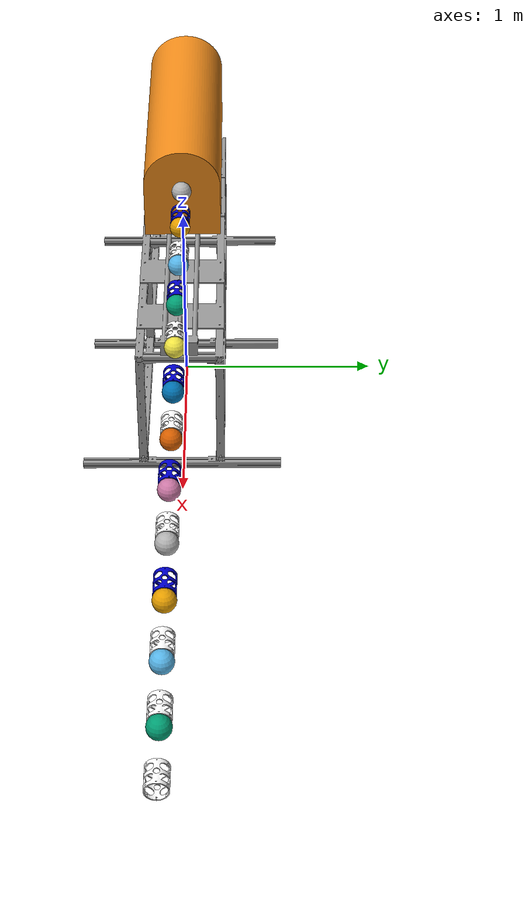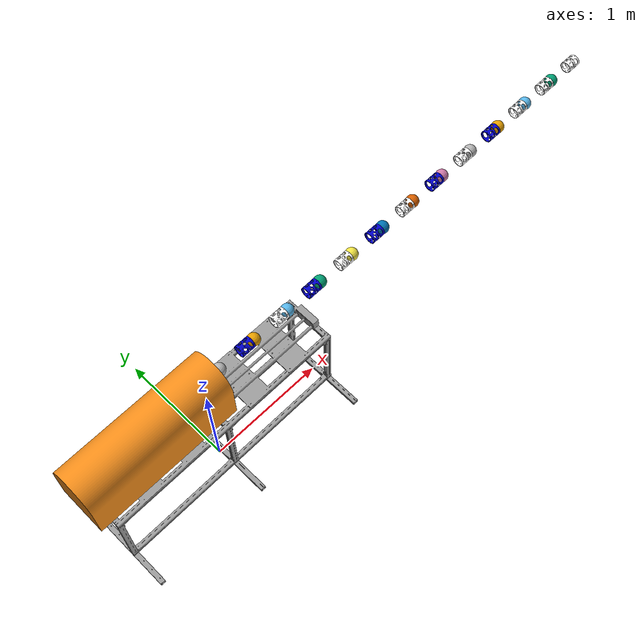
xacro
<?xml version="1.0"?>
<robot name="snake_12" xmlns:xacro="http://www.ros.org/wiki/xacro">

  <!-- properties -->
  <xacro:property name="cyl_radius" value="0.0475" />
  <xacro:property name="cyl_diameter" value="0.095" />
  <xacro:property name="cyl_height" value="0.12" />
  <xacro:property name="cyl_mass" value="0.125" /> <!-- in kg-->
  <xacro:property name="rev_axisY" value="0 1 0" />
  <xacro:property name="rev_axisZ" value="0 0 1" />
  <xacro:property name="deg2rad" value="0.01745329251994329577"/>
  <xacro:property name="Deg90Rad" value="1.57079632679"/>

  <macro name="cylinder_inertia" params="mass">
  <origin xyz="0 0 0" rpy="0 0 0"/>
    <inertia ixx="0.0741666666667" ixy="0.0" ixz="0.0" iyy="0.0585416666667" iyz="0.0" izz="0.0260416666667"/>
  </macro>

  <material name="blue">
    <color rgba="0 0 0.8 1"/>
  </material>
  <material name="black">
    <color rgba="0 0 0 1"/>
  </material>
  <material name="white">
    <color rgba="1 1 1 1"/>
  </material>
  <material name="red">
    <color rgba="1 0 0 1"/>
  </material>

  <xacro:macro name="transmission_block" params="joint_name">
	  <transmission name="tran1">
	    <type>transmission_interface/SimpleTransmission</type>
	    <joint name="${joint_name}">
	      <hardwareInterface>hardware_interface/PositionJointInterface</hardwareInterface>
	    </joint>
	    <actuator name="motor_${joint_name}">
	      <hardwareInterface>hardware_interface/PositionJointInterface</hardwareInterface>
	      <mechanicalReduction>1</mechanicalReduction>
	    </actuator>
	  </transmission>
   </xacro:macro>

<xacro:macro name="cyl" params="num material">
     <!-- params : number color revAxis { Y , Z } -->
    <link name="link_${num}">
      <visual>

        <origin rpy="0.0 0.0 0.0" xyz="${-cyl_radius} 0.024 ${-cyl_radius}"/>
        <geometry>
          <mesh filename="package://robot_snake_simulation/meshes/link_2.STL"/>
        </geometry>
        <material name="${material}" />
      </visual>

      <collision>
        <origin rpy="0.0 0.0 0.0" xyz="${-cyl_radius} 0.024 ${-cyl_radius}"/>
        <geometry>
          <mesh filename="package://robot_snake_simulation/meshes/link_2.STL"/>
        </geometry>
      </collision>
      <inertial>
        <mass value="${cyl_mass}" />
        <inertia ixx="0.4" ixy="0.0" ixz="0.0" iyy="0.4" iyz="0.0" izz="0.2"/>
      </inertial>
    </link>
  </xacro:macro>

<xacro:macro name="link_fake" params="num">
  <link name="link_fake_${num}">
    <visual>
        <origin xyz="0 0 0" rpy="0 0 0" />
        <geometry>
          <sphere radius="0.05"/>
        </geometry>
    </visual>
    <collision>
        <origin xyz="0 0 0" rpy="0 0 0" />
        <geometry>
          <sphere radius="0.05"/>
        </geometry>
    </collision>
  </link>
</xacro:macro>

 <xacro:macro name="attachjoint" params="parent child rev">
  <joint name="joint_${child}" type="continuous">
    <parent link="link_${parent}"/>
    <child link="link_${child}"/>
    <origin xyz="0.0 0.16 0.0" rpy="0.0 0.0 0.0" />
    <axis xyz="${rev}" />
    <dynamics damping="0.7"/>
  </joint>
 </xacro:macro>

<link name="world"/>

<link name="base_link" >
  <visual>
    <origin rpy="1.57079632679 0 3.14159265359" xyz="1 -0.5 -0.36"/>
    <geometry>
      <mesh filename="package://robot_snake_simulation/meshes/base.STL"/>
    </geometry>
  </visual>
  <collision>
    <geometry>
      <box size="2 1 0.72"/>
    </geometry>
  </collision>
  <inertial>
    <origin xyz="0 0 0" rpy="0 0 0"/>
    <mass value="100000" />
    <inertia ixx="100000" ixy="0.0" ixz="0.0" iyy="100000" iyz="0.0" izz="100000"/>
  </inertial>
</link>

    <link name="arc" >
      <visual>
        <origin rpy="0 0 0" xyz="-0.6 -0.195 -0.3175"/>
        <geometry>
          <mesh filename="package://robot_snake_simulation/meshes/arc.STL"/>
        </geometry>
      </visual>
    <collision>
    <origin rpy="0 0 0" xyz="0 0 0"/>
      <geometry>
        <box size="1.2 0.3 0.3"/>
      </geometry>
    </collision>
    <inertial>
      <origin xyz="0 0 0" rpy="0 0 0"/>
      <mass value="0.2" />
      <inertia ixx="0.0741666666667" ixy="0.0" ixz="0.0" iyy="0.0585416666667" iyz="0.0" izz="0.0260416666667"/>
   </inertial>
  </link>

  <xacro:cyl num="1"  material="blue" />
  <xacro:cyl num="2"  material="white" />
  <xacro:cyl num="3"  material="blue" />
  <xacro:cyl num="4"  material="white"/>
  <xacro:cyl num="5"  material="blue" />
  <xacro:cyl num="6"  material="white" />
  <xacro:cyl num="7"  material="blue" />
  <xacro:cyl num="8"  material="white" />
  <xacro:cyl num="9"  material="blue" />
  <xacro:cyl num="10" material="white" />
  <xacro:cyl num="11" material="white" />
  <xacro:cyl num="12" material="white" />
  <xacro:link_fake num="1" />
  <xacro:link_fake num="2" />
  <xacro:link_fake num="3" />
  <xacro:link_fake num="4" />
  <xacro:link_fake num="5" />
  <xacro:link_fake num="6" />
  <xacro:link_fake num="7" />
  <xacro:link_fake num="8" />
  <xacro:link_fake num="9" />
  <xacro:link_fake num="10" />
  <xacro:link_fake num="11" />
  <xacro:link_fake num="12" />

  <joint name="fixed" type="fixed">
    <parent link="world"/>
    <child link="base_link"/>
    <origin xyz="0.0 0.0 0.5" rpy="0 0 0" />
  </joint>

  <joint name="linear1" type="prismatic">
    <parent link="base_link"/>
    <child link="arc"/>
    <limit effort="0" lower="0" upper="2" velocity="0.5"/>
    <axis xyz="1 0 0" />
    <origin xyz="-0.5 0 ${0.7365-0.03175}" rpy="0 0 0" />
        <dynamics damping="0.7"/>
  </joint>

  <joint name="joint_fake_1" type="continuous">
    <parent link="arc"/>
    <child link="link_fake_1"/>

    <origin xyz="0.648 0.0 ${cyl_radius}" rpy="0.0 0.0 ${-Deg90Rad}" />
    <axis xyz="0 0 1" />
    <dynamics damping="0.7"/>
  </joint>

<xacro:attachjoint parent="fake_1"  child="1" rev="0 1 0" />

<xacro:attachjoint parent="1"  child="fake_2" rev="0 0 1" />
<xacro:attachjoint parent="fake_2"  child="2" rev="0 1 0" />

<xacro:attachjoint parent="2"  child="fake_3" rev="0 0 1" />
<xacro:attachjoint parent="fake_3"  child="3" rev="0 1 0" />

<xacro:attachjoint parent="3"  child="fake_4" rev="0 0 1" />
<xacro:attachjoint parent="fake_4"  child="4" rev="0 1 0" />

<xacro:attachjoint parent="4"  child="fake_5" rev="0 0 1" />
<xacro:attachjoint parent="fake_5"  child="5" rev="0 1 0" />

<xacro:attachjoint parent="5"  child="fake_6" rev="0 0 1" />
<xacro:attachjoint parent="fake_6"  child="6" rev="0 1 0" />

<xacro:attachjoint parent="6"  child="fake_7" rev="0 0 1" />
<xacro:attachjoint parent="fake_7"  child="7" rev="0 1 0" />

<xacro:attachjoint parent="7"  child="fake_8" rev="0 0 1" />
<xacro:attachjoint parent="fake_8"  child="8" rev="0 1 0" />

<xacro:attachjoint parent="8"  child="fake_9" rev="0 0 1" />
<xacro:attachjoint parent="fake_9"  child="9" rev="0 1 0" />

<xacro:attachjoint parent="9"  child="fake_10" rev="0 0 1" />
<xacro:attachjoint parent="fake_10"  child="10" rev="0 1 0" />

<xacro:attachjoint parent="10"  child="fake_11" rev="0 0 1" />
<xacro:attachjoint parent="fake_11"  child="11" rev="0 1 0" />

<xacro:attachjoint parent="11"  child="fake_12" rev="0 0 1" />
<xacro:attachjoint parent="fake_12"  child="12" rev="0 1 0" />

<gazebo reference="base_link">
  <material>Gazebo/Gray</material>
</gazebo>
  <gazebo reference="arc">
<material>Gazebo/Orange</material>
</gazebo>
  <gazebo reference="link_1">
<material>Gazebo/White</material>
</gazebo>
  <gazebo reference="link_2">
<material>Gazebo/Blue</material>
</gazebo>
<gazebo reference="link_3">
  <material>Gazebo/White</material>
</gazebo>
<gazebo reference="link_4">
  <material>Gazebo/Blue</material>
</gazebo>
<gazebo reference="link_5">
  <material>Gazebo/White</material>
</gazebo>
<gazebo reference="link_6">
  <material>Gazebo/Blue</material>
</gazebo>
<gazebo reference="link_7">
  <material>Gazebo/White</material>
</gazebo>
<gazebo reference="link_8">
  <material>Gazebo/Blue</material>
</gazebo>
<gazebo reference="link_9">
  <material>Gazebo/White</material>
</gazebo>
<gazebo reference="link_10">
  <material>Gazebo/Blue</material>
</gazebo>
<gazebo reference="link_11">
  <material>Gazebo/White</material>
</gazebo>
<gazebo reference="link_12">
  <material>Gazebo/Blue</material>
</gazebo>

  <!-- Transmissions for ROS Control -->
<transmission name="linear1">
  <type>transmission_interface/SimpleTransmission</type>
  <joint name="linear1">
    <hardwareInterface>hardware_interface/PositionJointInterface</hardwareInterface>
  </joint>
  <actuator name="motor_0">
	  <hardwareInterface>hardware_interface/PositionJointInterface</hardwareInterface>
	  <mechanicalReduction>1</mechanicalReduction>
	</actuator>
</transmission>

   <xacro:transmission_block joint_name="joint_fake_1"/>
   <xacro:transmission_block joint_name="joint_1"/>

   <xacro:transmission_block joint_name="joint_fake_2"/>
   <xacro:transmission_block joint_name="joint_2"/>

   <xacro:transmission_block joint_name="joint_fake_3"/>
   <xacro:transmission_block joint_name="joint_3"/>

   <xacro:transmission_block joint_name="joint_fake_4"/>
   <xacro:transmission_block joint_name="joint_4"/>

   <xacro:transmission_block joint_name="joint_fake_5"/>
   <xacro:transmission_block joint_name="joint_5"/>

   <xacro:transmission_block joint_name="joint_fake_6"/>
   <xacro:transmission_block joint_name="joint_6"/>

   <xacro:transmission_block joint_name="joint_fake_7"/>
   <xacro:transmission_block joint_name="joint_7"/>

   <xacro:transmission_block joint_name="joint_fake_8"/>
   <xacro:transmission_block joint_name="joint_8"/>

   <xacro:transmission_block joint_name="joint_fake_9"/>
   <xacro:transmission_block joint_name="joint_9"/>

   <xacro:transmission_block joint_name="joint_fake_10"/>
   <xacro:transmission_block joint_name="joint_10"/>

   <xacro:transmission_block joint_name="joint_fake_11"/>
   <xacro:transmission_block joint_name="joint_11"/>

   <xacro:transmission_block joint_name="joint_fake_12"/>
   <xacro:transmission_block joint_name="joint_12"/>

  <!-- ros_control plugin -->
  <gazebo>
    <plugin name="gazebo_ros_control" filename="libgazebo_ros_control.so">
      <robotNamespace>/snake_12</robotNamespace>
      <legacyModeNS>true</legacyModeNS>
    </plugin>
  </gazebo>
  <!-- Define RGB-D sensor -->
</robot>
